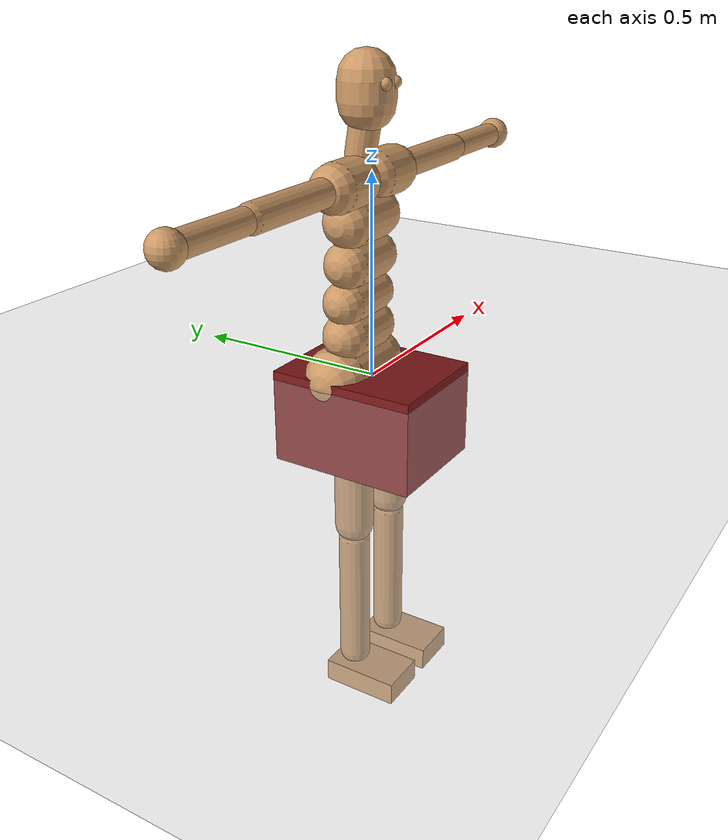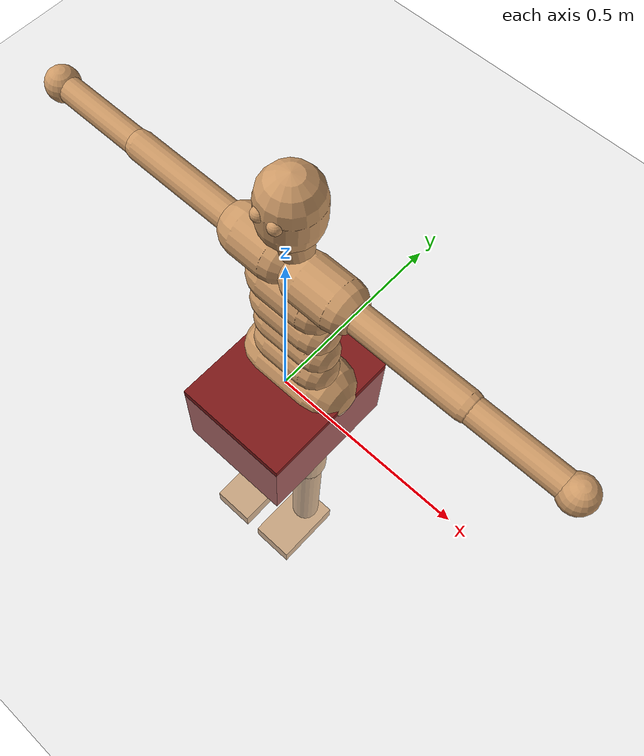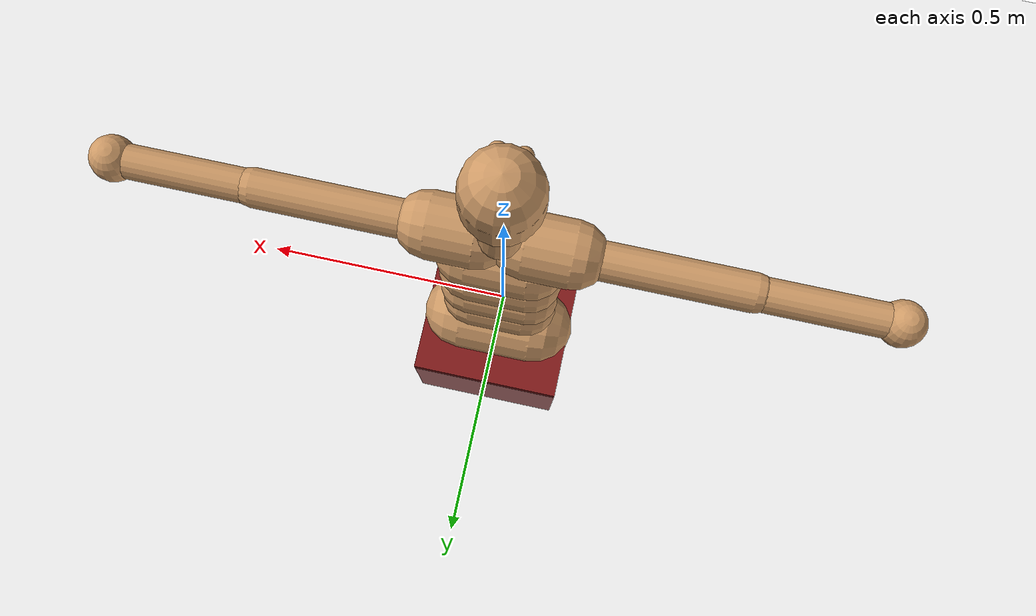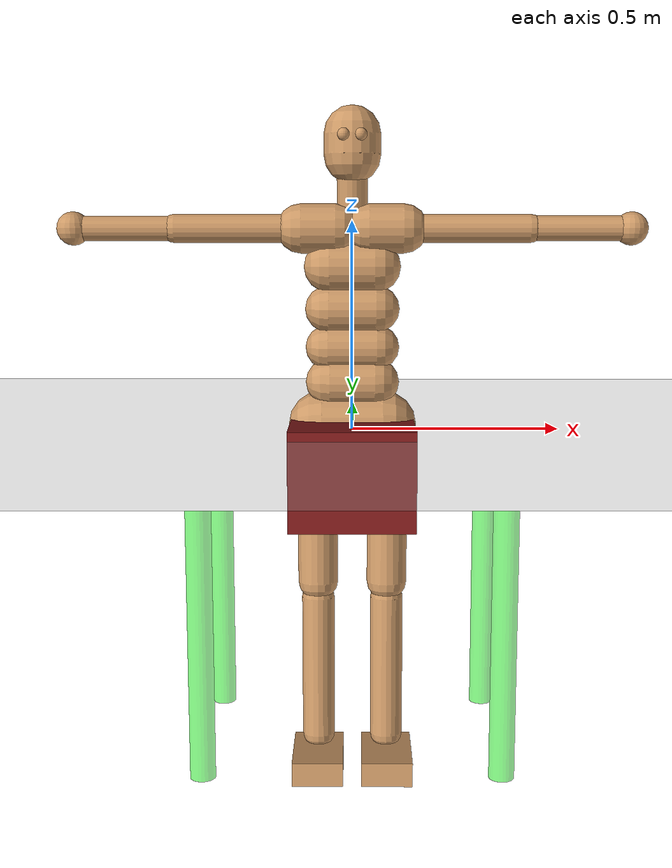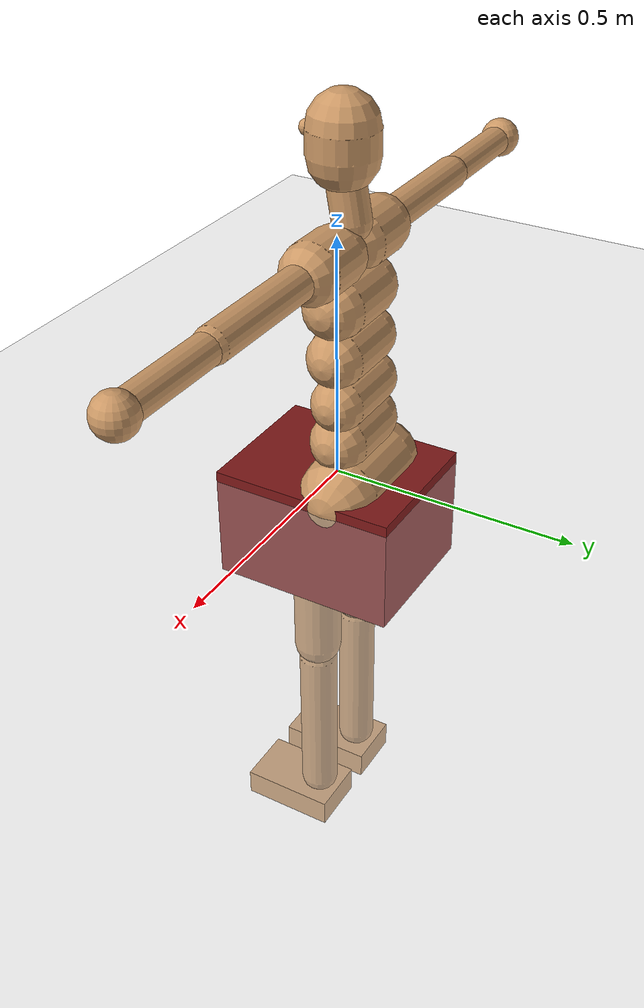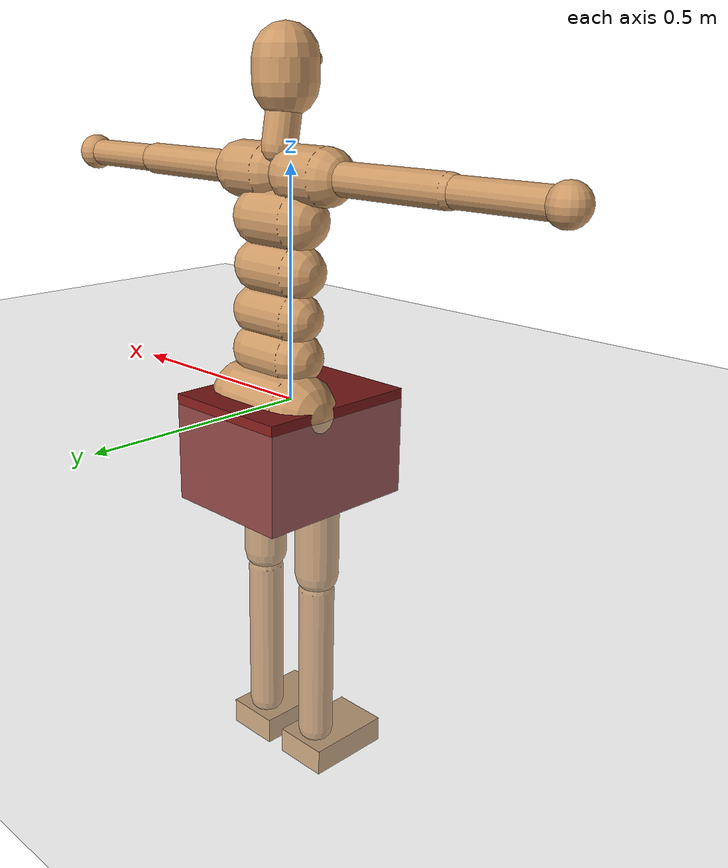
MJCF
<mujoco model="humanoid">
  <compiler angle="degree" inertiafromgeom="true" coordinate="global"/>
  <include file="./common/materials.xml"/>
  <visual>
    <headlight ambient=".4 .4 .4" diffuse=".8 .8 .8" specular="0.1 0.1 0.1"/>
    <map znear=".01"/>
    <quality shadowsize="2048"/>
  </visual>
  <default>
    <joint damping="0.0" armature="0.01" stiffness="0.0" limited="true"/>
    <geom conaffinity="7" condim="1" contype="7" margin="0.001" material="self" rgba="0.8 0.6 .4 1"/>
    <default class="trans">
      <geom rgba="0.8 0.6 .4 0.3"/>
    </default>
  </default>
  <statistic extent="3" center="0 0 1"/>
  <option timestep="0.00222222222">
    <flag contact="disable"/>
  </option>
  <asset>
    <texture type="skybox" file="./common/sky1.png" gridsize="3 4" gridlayout=".U..LFRB.D.." width="8192" height="8192"/>
    <texture builtin="flat" height="1278" mark="cross" markrgb="1 1 1" name="texgeom" random="0.01" rgb1=".8 .6 .4" rgb2=".8 .6 .4" type="cube" width="127"/>
  </asset>
  <worldbody>
    <light cutoff="100" diffuse="1 1 1" dir="-0 0 -1.3" directional="true" exponent="1" pos="0 0 1.3" specular=".1 .1 .1"/>
    <geom condim="3" friction="1. .1 .1" material="grid" name="floor" pos="0 0 0" rgba=".8 .8 .8 0.2" size="100 100 .2" type="plane"/>
    <body name="box" pos="0 0 0">
      <joint limited="false" name="box" type="free"/>
      <geom type="box" size="0.15 0.19 0.120" pos="0 0 -0.1" euler="0 0 0" rgba="0.5 0.1 0.1 1" condim="3" mass="1.0"/>
    </body>
    <body name="table" pos="0 0 0">
      <joint limited="false" name="table" type="free"/>
      <geom type="box" size="0.499 0.294 0.01" pos="0.0 0.0 -0.1" euler="0 0 0" rgba="0 0.9 0 0.5" condim="3" mass="100.0"/>
      <geom type="cylinder" size="0.03 0.35" pos="-0.35 -0.25 -0.44" euler="0 0 0" rgba="0 0.9 0 0.5" condim="3" mass="100.0"/>
      <geom type="cylinder" size="0.03 0.35" pos="-0.35  0.25 -0.44" euler="0 0 0" rgba="0 0.9 0 0.5" condim="3" mass="100.0"/>
      <geom type="cylinder" size="0.03 0.35" pos=" 0.35 -0.25 -0.44" euler="0 0 0" rgba="0 0.9 0 0.5" condim="3" mass="100.0"/>
      <geom type="cylinder" size="0.03 0.35" pos=" 0.35  0.25 -0.44" euler="0 0 0" rgba="0 0.9 0 0.5" condim="3" mass="100.0"/>
    </body>
    <body name="Hips" user="0.0000 0.0146 0.0054" pos="0.0000 0.0146 0.0054">
      <geom fromto="-0.0750 0.0506 0.0054 0.0750 0.0506 0.0054" size="0.0820" type="capsule"/>
      <joint armature="0" damping="0" limited="false" name="Hips" pos="0.0000 0.0000 0.0000" stiffness="0" type="free"/>
      <body name="Spine" user="0.0000 0.0591 0.1523" pos="0.0000 0.0146 0.0054">
        <geom fromto="-0.0550 0.0369 0.1109 0.0550 0.0369 0.1109" size="0.0590" type="capsule"/>
        <joint axis="1.0000 0.0000 0.0000" name="Spine_x" pos="0.0000 0.0439 0.0658" range="-30.0000 45.0000" type="hinge"/>
        <joint axis="0.0000 1.0000 0.0000" name="Spine_y" pos="0.0000 0.0439 0.0658" range="-30.0000 30.0000" type="hinge"/>
        <joint axis="0.0000 0.0000 1.0000" name="Spine_z" pos="0.0000 0.0439 0.0658" range="-30.0000 30.0000" type="hinge"/>
        <body name="Spine1" user="0.0000 0.0668 0.2397" pos="0.0000 0.0591 0.1523">
          <geom fromto="-0.0600 0.0370 0.1960 0.0600 0.0370 0.1960" size="0.0540" type="capsule"/>
          <joint axis="1.0000 0.0000 0.0000" name="Spine1_x" pos="0.0000 0.0591 0.1523" range="-30.0000 45.0000" type="hinge"/>
          <joint axis="0.0000 1.0000 0.0000" name="Spine1_y" pos="0.0000 0.0591 0.1523" range="-30.0000 30.0000" type="hinge"/>
          <joint axis="0.0000 0.0000 1.0000" name="Spine1_z" pos="0.0000 0.0591 0.1523" range="-30.0000 30.0000" type="hinge"/>
          <body name="Spine2" user="0.0000 0.0668 0.3275" pos="0.0000 0.0668 0.2397">
            <geom fromto="-0.0575 0.0308 0.2896 0.0575 0.0308 0.2896" size="0.0570" type="capsule"/>
            <joint axis="1.0000 0.0000 0.0000" name="Spine2_x" pos="0.0000 0.0668 0.2397" range="-30.0000 45.0000" type="hinge"/>
            <joint axis="0.0000 1.0000 0.0000" name="Spine2_y" pos="0.0000 0.0668 0.2397" range="-30.0000 30.0000" type="hinge"/>
            <joint axis="0.0000 0.0000 1.0000" name="Spine2_z" pos="0.0000 0.0668 0.2397" range="-30.0000 30.0000" type="hinge"/>
            <body name="Spine3" user="0.0000 0.0240 0.5074" pos="0.0000 0.0668 0.3275">
              <geom fromto="-0.0550 0.0274 0.3914 0.0550 0.0274 0.3914" size="0.0620" type="capsule"/>
              <joint axis="1.0000 0.0000 0.0000" name="Spine3_x" pos="0.0000 0.0668 0.3275" range="-30.0000 45.0000" type="hinge"/>
              <joint axis="0.0000 1.0000 0.0000" name="Spine3_y" pos="0.0000 0.0668 0.3275" range="-30.0000 30.0000" type="hinge"/>
              <joint axis="0.0000 0.0000 1.0000" name="Spine3_z" pos="0.0000 0.0668 0.3275" range="-30.0000 30.0000" type="hinge"/>
              <body name="Neck" user="0.0000 0.0129 0.6768" pos="0.0000 0.0240 0.5074">
                <joint axis="1.0000 0.0000 0.0000" name="Neck_x" pos="0.0000 0.0339 0.5579" range="-30.0000 45.0000" type="hinge"/>
                <joint axis="0.0000 1.0000 0.0000" name="Neck_y" pos="0.0000 0.0339 0.5579" range="-30.0000 30.0000" type="hinge"/>
                <joint axis="0.0000 0.0000 1.0000" name="Neck_z" pos="0.0000 0.0339 0.5579" range="-30.0000 30.0000" type="hinge"/>
                <geom fromto="0.0000 0.0304 0.5336 0.0000 0.0164 0.6131" size="0.0370" type="capsule"/>
                <body name="Head" user="0.0000 0.0129 0.8188" pos="0.0000 0.0129 0.6768">
                  <geom pos="0.0200 -0.0471 0.6968" size="0.0150" type="sphere"/>
                  <geom pos="-0.0200 -0.0471 0.6968" size="0.0150" type="sphere"/>
                  <geom fromto="0.0000 0.0129 0.6543 0.0000 0.0129 0.7013" size="0.0680" type="capsule"/>
                  <joint axis="1.0000 0.0000 0.0000" name="Head_x" pos="0.0000 0.0129 0.6768" range="-30.0000 45.0000" type="hinge"/>
                  <joint axis="0.0000 1.0000 0.0000" name="Head_y" pos="0.0000 0.0129 0.6768" range="-30.0000 30.0000" type="hinge"/>
                  <joint axis="0.0000 0.0000 1.0000" name="Head_z" pos="0.0000 0.0129 0.6768" range="-30.0000 30.0000" type="hinge"/>
                </body>
              </body>
              <body name="RightShoulder" user="-0.1708 0.0191 0.4821" pos="0.0000 0.0240 0.5074">
                <joint axis="1.0000 0.0000 0.0000" name="RightShoulder_x" pos="-0.0286 0.0191 0.4821" range="-20.0000 20.0000" type="hinge"/>
                <joint axis="0.0000 1.0000 0.0000" name="RightShoulder_y" pos="-0.0286 0.0191 0.4821" range="-20.0000 20.0000" type="hinge"/>
                <joint axis="0.0000 0.0000 1.0000" name="RightShoulder_z" pos="-0.0286 0.0191 0.4821" range="-20.0000 20.0000" type="hinge"/>
                <geom fromto="-0.0406 0.0191 0.4821 -0.1228 0.0191 0.4821" size="0.0590" type="capsule"/>
                <body name="RightArm" user="-0.4103 0.0191 0.4821" pos="-0.1708 0.0191 0.4821">
                  <joint axis="1.0000 0.0000 0.0000" name="RightArm_x" pos="-0.1708 0.0191 0.4821" range="-90.0000 90.0000" type="hinge"/>
                  <joint axis="0.0000 1.0000 0.0000" name="RightArm_y" pos="-0.1708 0.0191 0.4821" range="-90.0000 90.0000" type="hinge"/>
                  <joint axis="0.0000 0.0000 1.0000" name="RightArm_z" pos="-0.1708 0.0191 0.4821" range="-60.0000 90.0000" type="hinge"/>
                  <geom fromto="-0.1558 0.0191 0.4821 -0.4253 0.0191 0.4821" size="0.0340" type="capsule"/>
                  <body name="RightForeArm" user="-0.6643 0.0191 0.4821" pos="-0.4103 0.0191 0.4821">
                    <joint axis="0.0000 0.0000 1.0000" name="RightForeArm_z" pos="-0.4103 0.0191 0.4821" range="-10.0000 170.0000" type="hinge"/>
                    <geom fromto="-0.4303 0.0191 0.4821 -0.6443 0.0191 0.4821" size="0.0300" type="capsule"/>
                    <body name="RightHand" user="-0.7282 0.0191 0.4821" pos="-0.6643 0.0191 0.4821">
                      <geom pos="-0.6683 0.0191 0.4821" size="0.0400" type="sphere"/>
                      <joint axis="1.0000 0.0000 0.0000" name="RightHand_x" pos="-0.6643 0.0191 0.4821" range="-90.0000 90.0000" type="hinge"/>
                      <joint axis="0.0000 1.0000 0.0000" name="RightHand_y" pos="-0.6643 0.0191 0.4821" range="-90.0000 90.0000" type="hinge"/>
                      <joint axis="0.0000 0.0000 1.0000" name="RightHand_z" pos="-0.6643 0.0191 0.4821" range="-90.0000 90.0000" type="hinge"/>
                    </body>
                  </body>
                </body>
              </body>
              <body name="LeftShoulder" user="0.1708 0.0191 0.4821" pos="-0.0000 0.0240 0.5074">
                <joint axis="1.0000 0.0000 0.0000" name="LeftShoulder_x" pos="0.0286 0.0191 0.4821" range="-20.0000 20.0000" type="hinge"/>
                <joint axis="0.0000 1.0000 0.0000" name="LeftShoulder_y" pos="0.0286 0.0191 0.4821" range="-20.0000 20.0000" type="hinge"/>
                <joint axis="0.0000 0.0000 1.0000" name="LeftShoulder_z" pos="0.0286 0.0191 0.4821" range="-20.0000 20.0000" type="hinge"/>
                <geom fromto="0.0406 0.0191 0.4821 0.1228 0.0191 0.4821" size="0.0590" type="capsule"/>
                <body name="LeftArm" user="0.4103 0.0191 0.4821" pos="0.1708 0.0191 0.4821">
                  <joint axis="1.0000 0.0000 0.0000" name="LeftArm_x" pos="0.1708 0.0191 0.4821" range="-90.0000 90.0000" type="hinge"/>
                  <joint axis="0.0000 1.0000 0.0000" name="LeftArm_y" pos="0.1708 0.0191 0.4821" range="-90.0000 90.0000" type="hinge"/>
                  <joint axis="0.0000 0.0000 1.0000" name="LeftArm_z" pos="0.1708 0.0191 0.4821" range="-90.0000 60.0000" type="hinge"/>
                  <geom fromto="0.1558 0.0191 0.4821 0.4253 0.0191 0.4821" size="0.0340" type="capsule"/>
                  <body name="LeftForeArm" user="0.6643 0.0191 0.4821" pos="0.4103 0.0191 0.4821">
                    <joint axis="0.0000 0.0000 1.0000" name="LeftForeArm_z" pos="0.4103 0.0191 0.4821" range="-170.0000 10.0000" type="hinge"/>
                    <geom fromto="0.4303 0.0191 0.4821 0.6443 0.0191 0.4821" size="0.0300" type="capsule"/>
                    <body name="LeftHand" user="0.7282 0.0191 0.4821" pos="0.6643 0.0191 0.4821">
                      <geom pos="0.6683 0.0191 0.4821" size="0.0400" type="sphere"/>
                      <joint axis="1.0000 0.0000 0.0000" name="LeftHand_x" pos="0.6643 0.0191 0.4821" range="-90.0000 90.0000" type="hinge"/>
                      <joint axis="0.0000 1.0000 0.0000" name="LeftHand_y" pos="0.6643 0.0191 0.4821" range="-90.0000 90.0000" type="hinge"/>
                      <joint axis="0.0000 0.0000 1.0000" name="LeftHand_z" pos="0.6643 0.0191 0.4821" range="-90.0000 90.0000" type="hinge"/>
                    </body>
                  </body>
                </body>
              </body>
            </body>
          </body>
        </body>
      </body>
      <body name="RightUpLeg" user="-0.0849 0.0000 -0.4027" pos="0.0000 0.0146 0.0054">
        <joint axis="1.0000 0.0000 0.0000" name="RightUpLeg_x" pos="-0.0849 0.0000 -0.0248" range="-170.0000 20.0000" type="hinge"/>
        <joint axis="0.0000 1.0000 0.0000" name="RightUpLeg_y" pos="-0.0849 0.0000 -0.0248" range="-40.0000 90.0000" type="hinge"/>
        <joint axis="0.0000 0.0000 1.0000" name="RightUpLeg_z" pos="-0.0849 0.0000 -0.0248" range="-70.0000 70.0000" type="hinge"/>
        <geom fromto="-0.0849 0.0000 -0.0448 -0.0849 0.0000 -0.3827" size="0.0490" type="capsule"/>
        <body name="RightLeg" user="-0.0849 0.0000 -0.7988" pos="-0.0849 0.0000 -0.4027">
          <joint axis="1.0000 0.0000 0.0000" name="RightLeg_x" pos="-0.0849 0.0000 -0.4027" range="0.0000 170.0000" type="hinge"/>
          <geom contype="1" conaffinity="1" fromto="-0.0849 0.0000 -0.4227 -0.0849 0.0000 -0.7788" size="0.0400" type="capsule"/>
          <body name="RightFoot" user="-0.0849 -0.1308 -0.8464" pos="-0.0849 0.0000 -0.7988">
            <geom contype="1" conaffinity="1" pos="-0.0849 -0.0514 -0.8306" size="0.0620 0.1000 0.0300" quat="1.0000 -0.0000 -0.0000 -0.0000" type="box"/>
            <joint axis="1.0000 0.0000 0.0000" name="RightFoot_x" pos="-0.0849 0.0000 -0.7988" range="-90.0000 90.0000" type="hinge"/>
            <joint axis="0.0000 1.0000 0.0000" name="RightFoot_y" pos="-0.0849 0.0000 -0.7988" range="-60.0000 60.0000" type="hinge"/>
            <joint axis="0.0000 0.0000 1.0000" name="RightFoot_z" pos="-0.0849 0.0000 -0.7988" range="-90.0000 90.0000" type="hinge"/>
          </body>
        </body>
      </body>
      <body name="LeftUpLeg" user="0.0849 0.0000 -0.4027" pos="-0.0000 0.0146 0.0054">
        <joint axis="1.0000 0.0000 0.0000" name="LeftUpLeg_x" pos="0.0849 0.0000 -0.0248" range="-170.0000 20.0000" type="hinge"/>
        <joint axis="0.0000 1.0000 0.0000" name="LeftUpLeg_y" pos="0.0849 0.0000 -0.0248" range="-90.0000 40.0000" type="hinge"/>
        <joint axis="0.0000 0.0000 1.0000" name="LeftUpLeg_z" pos="0.0849 0.0000 -0.0248" range="-70.0000 70.0000" type="hinge"/>
        <geom fromto="0.0849 0.0000 -0.0448 0.0849 0.0000 -0.3827" size="0.0490" type="capsule"/>
        <body name="LeftLeg" user="0.0849 0.0000 -0.7988" pos="0.0849 0.0000 -0.4027">
          <joint axis="1.0000 0.0000 0.0000" name="LeftLeg_x" pos="0.0849 0.0000 -0.4027" range="0.0000 170.0000" type="hinge"/>
          <geom contype="2" conaffinity="2" fromto="0.0849 0.0000 -0.4227 0.0849 0.0000 -0.7788" size="0.0400" type="capsule"/>
          <body name="LeftFoot" user="0.0849 -0.1308 -0.8464" pos="0.0849 0.0000 -0.7988">
            <geom contype="2" conaffinity="2" pos="0.0849 -0.0514 -0.8306" size="0.0620 0.1000 0.0300" quat="1.0000 -0.0000 -0.0000 0.0000" type="box"/>
            <joint axis="1.0000 0.0000 0.0000" name="LeftFoot_x" pos="0.0849 0.0000 -0.7988" range="-90.0000 90.0000" type="hinge"/>
            <joint axis="0.0000 1.0000 0.0000" name="LeftFoot_y" pos="0.0849 0.0000 -0.7988" range="-60.0000 60.0000" type="hinge"/>
            <joint axis="0.0000 0.0000 1.0000" name="LeftFoot_z" pos="0.0849 0.0000 -0.7988" range="-90.0000 90.0000" type="hinge"/>
          </body>
        </body>
      </body>
    </body>
  </worldbody>
</mujoco>

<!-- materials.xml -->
<!--
Common textures, colors and materials to be used throughout this suite. Some
materials such as xxx_highlight are activated on occurence of certain events,
for example receiving a positive reward.
-->
<mujoco>
  <asset>
    <texture name="grid" type="2d" builtin="checker" rgb1=".1 .1 .1" rgb2=".3 .3 .3" width="300" height="300" mark="edge" markrgb=".1 .1 .1"/>
    <texture builtin="checker" height="100" name="texplane" rgb1=".1 .1 .1" rgb2=".8 .8 .8" type="2d" width="100"/>
    <texture name="grass" file="./common/grass.png" type="2d"/>
    <material name="grid" texture="grid" texrepeat="1 1" texuniform="true" reflectance=".2"/>
    <material name="MatPlane" reflectance="0.5" shininess="1" specular="1" texrepeat="60 60" texture="texplane"/>
    <material name="GrassPlane" reflectance="0.0" shininess="1" specular="1" texrepeat="400 400" texture="grass"/>
    <material name="self" rgba=".7 .5 .3 1"/>
    <material name="self_default" rgba=".7 .5 .3 1"/>
    <material name="self_highlight" rgba="0 .5 .3 1"/>
    <material name="effector" rgba=".7 .4 .2 1"/>
    <material name="effector_default" rgba=".7 .4 .2 1"/>
    <material name="effector_highlight" rgba="0 .5 .3 1"/>
    <material name="decoration" rgba=".3 .5 .7 1"/>
    <material name="eye" rgba="0 .2 1 1"/>
    <material name="target" rgba=".6 .3 .3 1"/>
    <material name="target_default" rgba=".6 .3 .3 1"/>
    <material name="target_highlight" rgba=".6 .3 .3 .4"/>
    <material name="expert" rgba=".6 .3 .3 .4"/>
  </asset>
</mujoco>
